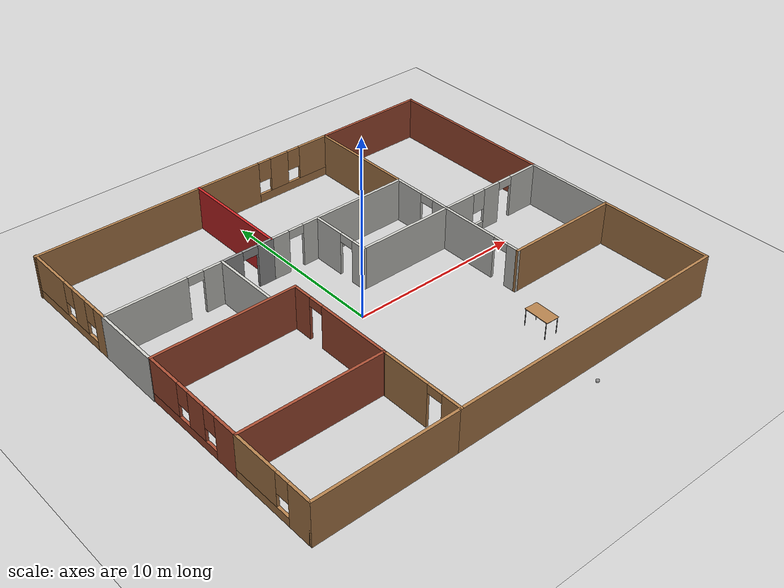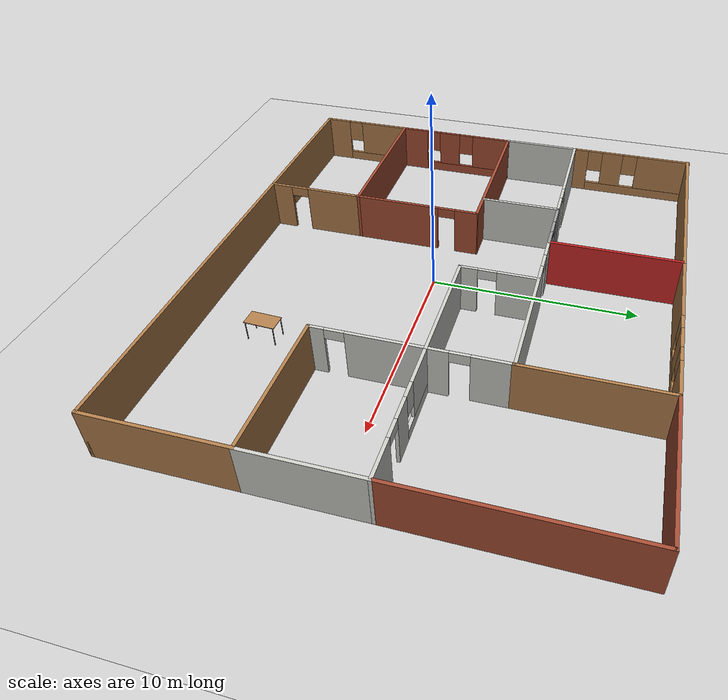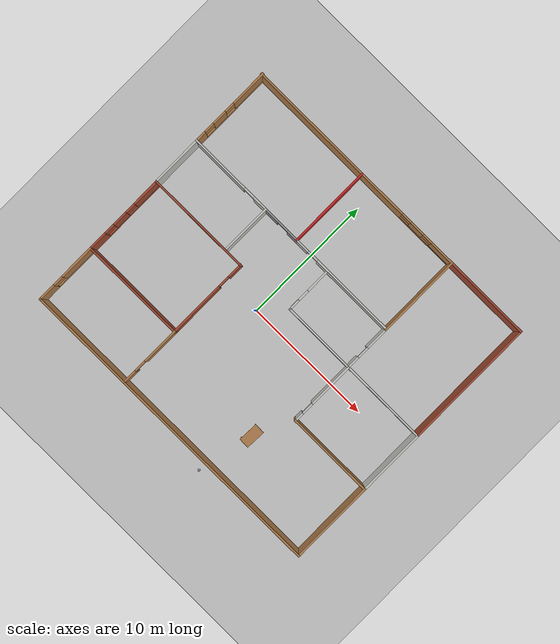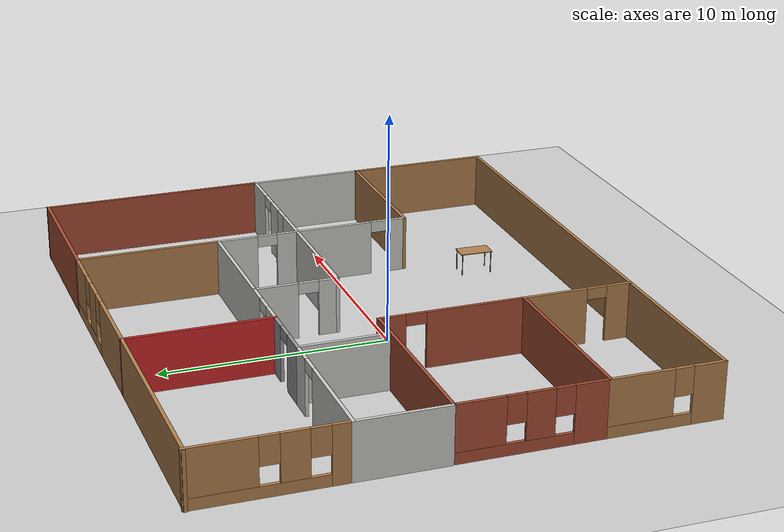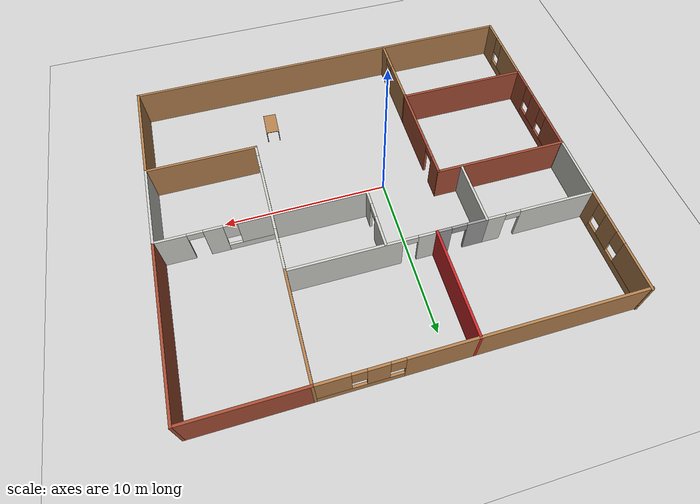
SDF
<sdf version="1.6">
 <world name="default">
  <model name="ground_plane">
   <static>1</static>
   <link name="link">
    <collision name="collision">
     <geometry><plane><normal>0 0 1</normal><size>100 100</size></plane></geometry>
     <surface><friction><ode><mu>100</mu><mu2>50</mu2></ode></friction></surface>
    </collision>
    <visual name="visual">
     <cast_shadows>0</cast_shadows>
     <geometry><plane><normal>0 0 1</normal><size>100 100</size></plane></geometry>
     <material>
      <script><uri>file://media/materials/scripts/gazebo.material</uri><name>Gazebo/Grey</name></script>
     </material>
    </visual>
   </link>
  </model>
  <model name="building">
   <pose>1.3748 0.98314 0 0 -0 0</pose>
   <link name="Wall_102">
    <pose>5.78961 2.52674 0 0 -0 1.5708</pose>
    <visual name="Wall_102_Visual_0">
     <pose>-1.35652 0 1.25 0 -0 0</pose>
     <geometry><box><size>1.03697 0.15 2.5</size></box></geometry>
     <material>
      <script><uri>file://media/materials/scripts/gazebo.material</uri><name>Gazebo/CeilingTiled</name></script>
      <ambient>1 1 1 1</ambient>
     </material>
     <meta><layer>0</layer></meta>
    </visual>
    <collision name="Wall_102_Collision_0">
     <geometry><box><size>1.03697 0.15 2.5</size></box></geometry>
     <pose>-1.35652 0 1.25 0 -0 0</pose>
    </collision>
    <visual name="Wall_102_Visual_1">
     <pose>0.968484 0 1.25 0 -0 0</pose>
     <geometry><box><size>1.81303 0.15 2.5</size></box></geometry>
     <material>
      <script><uri>file://media/materials/scripts/gazebo.material</uri><name>Gazebo/CeilingTiled</name></script>
      <ambient>1 1 1 1</ambient>
     </material>
     <meta><layer>0</layer></meta>
    </visual>
    <collision name="Wall_102_Collision_1">
     <geometry><box><size>1.81303 0.15 2.5</size></box></geometry>
     <pose>0.968484 0 1.25 0 -0 0</pose>
    </collision>
    <visual name="Wall_102_Visual_2">
     <pose>-0.388033 0 2.25 0 -0 0</pose>
     <geometry><box><size>0.9 0.15 0.5</size></box></geometry>
     <material>
      <script><uri>file://media/materials/scripts/gazebo.material</uri><name>Gazebo/CeilingTiled</name></script>
      <ambient>1 1 1 1</ambient>
     </material>
     <meta><layer>0</layer></meta>
    </visual>
    <collision name="Wall_102_Collision_2">
     <geometry><box><size>0.9 0.15 0.5</size></box></geometry>
     <pose>-0.388033 0 2.25 0 -0 0</pose>
    </collision>
   </link>
   <link name="Wall_104">
    <collision name="Wall_104_Collision">
     <geometry><box><size>6.45348 0.15 2.5</size></box></geometry>
     <pose>0 0 1.25 0 -0 0</pose>
    </collision>
    <visual name="Wall_104_Visual">
     <pose>0 0 1.25 0 -0 0</pose>
     <geometry><box><size>6.45348 0.15 2.5</size></box></geometry>
     <material>
      <script><uri>file://media/materials/scripts/gazebo.material</uri><name>Gazebo/Red</name></script>
      <ambient>1 1 1 1</ambient>
     </material>
     <meta><layer>0</layer></meta>
    </visual>
    <pose>-2.78961 7.525 0 0 -0 1.5708</pose>
   </link>
   <link name="Wall_107">
    <collision name="Wall_107_Collision">
     <geometry><box><size>6.5 0.15 2.5</size></box></geometry>
     <pose>0 0 1.25 0 -0 0</pose>
    </collision>
    <visual name="Wall_107_Visual">
     <pose>0 0 1.25 0 -0 0</pose>
     <geometry><box><size>6.5 0.15 2.5</size></box></geometry>
     <material>
      <script><uri>file://media/materials/scripts/gazebo.material</uri><name>Gazebo/Wood</name></script>
      <ambient>1 1 1 1</ambient>
     </material>
     <meta><layer>0</layer></meta>
    </visual>
    <pose>5.78961 7.50174 0 0 -0 1.5708</pose>
   </link>
   <link name="Wall_111">
    <pose>-12.342 7.54826 0 0 -0 1.5708</pose>
    <visual name="Wall_111_Visual_0">
     <pose>-2.8028 0 1.25 0 -0 0</pose>
     <geometry><box><size>0.894393 0.15 2.5</size></box></geometry>
     <material>
      <script><uri>file://media/materials/scripts/gazebo.material</uri><name>Gazebo/Wood</name></script>
      <ambient>1 1 1 1</ambient>
     </material>
     <meta><layer>0</layer></meta>
    </visual>
    <collision name="Wall_111_Collision_0">
     <geometry><box><size>0.894393 0.15 2.5</size></box></geometry>
     <pose>-2.8028 0 1.25 0 -0 0</pose>
    </collision>
    <visual name="Wall_111_Visual_1">
     <pose>0.447197 0 0.25 0 -0 0</pose>
     <geometry><box><size>5.60561 0.15 0.5</size></box></geometry>
     <material>
      <script><uri>file://media/materials/scripts/gazebo.material</uri><name>Gazebo/Wood</name></script>
      <ambient>1 1 1 1</ambient>
     </material>
     <meta><layer>0</layer></meta>
    </visual>
    <collision name="Wall_111_Collision_1">
     <geometry><box><size>5.60561 0.15 0.5</size></box></geometry>
     <pose>0.447197 0 0.25 0 -0 0</pose>
    </collision>
    <visual name="Wall_111_Visual_2">
     <pose>-0.984121 0 1.5 0 -0 0</pose>
     <geometry><box><size>1.14297 0.15 2</size></box></geometry>
     <material>
      <script><uri>file://media/materials/scripts/gazebo.material</uri><name>Gazebo/Wood</name></script>
      <ambient>1 1 1 1</ambient>
     </material>
     <meta><layer>0</layer></meta>
    </visual>
    <collision name="Wall_111_Collision_2">
     <geometry><box><size>1.14297 0.15 2</size></box></geometry>
     <pose>-0.984121 0 1.5 0 -0 0</pose>
    </collision>
    <visual name="Wall_111_Visual_3">
     <pose>1.81868 0 1.5 0 -0 0</pose>
     <geometry><box><size>2.86264 0.15 2</size></box></geometry>
     <material>
      <script><uri>file://media/materials/scripts/gazebo.material</uri><name>Gazebo/Wood</name></script>
      <ambient>1 1 1 1</ambient>
     </material>
     <meta><layer>0</layer></meta>
    </visual>
    <collision name="Wall_111_Collision_3">
     <geometry><box><size>2.86264 0.15 2</size></box></geometry>
     <pose>1.81868 0 1.5 0 -0 0</pose>
    </collision>
    <visual name="Wall_111_Visual_4">
     <pose>-1.95561 0 1.9 0 -0 0</pose>
     <geometry><box><size>0.8 0.15 1.2</size></box></geometry>
     <material>
      <script><uri>file://media/materials/scripts/gazebo.material</uri><name>Gazebo/Wood</name></script>
      <ambient>1 1 1 1</ambient>
     </material>
     <meta><layer>0</layer></meta>
    </visual>
    <collision name="Wall_111_Collision_4">
     <geometry><box><size>0.8 0.15 1.2</size></box></geometry>
     <pose>-1.95561 0 1.9 0 -0 0</pose>
    </collision>
    <visual name="Wall_111_Visual_5">
     <pose>-0.012636 0 1.9 0 -0 0</pose>
     <geometry><box><size>0.8 0.15 1.2</size></box></geometry>
     <material>
      <script><uri>file://media/materials/scripts/gazebo.material</uri><name>Gazebo/Wood</name></script>
      <ambient>1 1 1 1</ambient>
     </material>
     <meta><layer>0</layer></meta>
    </visual>
    <collision name="Wall_111_Collision_5">
     <geometry><box><size>0.8 0.15 1.2</size></box></geometry>
     <pose>-0.012636 0 1.9 0 -0 0</pose>
    </collision>
   </link>
   <link name="Wall_115">
    <collision name="Wall_115_Collision">
     <geometry><box><size>9.75 0.15 2.5</size></box></geometry>
     <pose>0 0 1.25 0 -0 0</pose>
    </collision>
    <visual name="Wall_115_Visual">
     <pose>0 0 1.25 0 -0 0</pose>
     <geometry><box><size>9.75 0.15 2.5</size></box></geometry>
     <material>
      <script><uri>file://media/materials/scripts/gazebo.material</uri><name>Gazebo/Wood</name></script>
      <ambient>1 1 1 1</ambient>
     </material>
     <meta><layer>0</layer></meta>
    </visual>
    <pose>-7.58961 10.6767 0 0 -0 3.14159</pose>
   </link>
   <link name="Wall_118">
    <collision name="Wall_118_Collision">
     <geometry><box><size>6.75 0.15 2.5</size></box></geometry>
     <pose>0 0 1.25 0 -0 0</pose>
    </collision>
    <visual name="Wall_118_Visual">
     <pose>0 0 1.25 0 -0 0</pose>
     <geometry><box><size>6.75 0.15 2.5</size></box></geometry>
     <material>
      <script><uri>file://media/materials/scripts/gazebo.material</uri><name>Gazebo/Bricks</name></script>
      <ambient>1 1 1 1</ambient>
     </material>
     <meta><layer>0</layer></meta>
    </visual>
    <pose>9.08961 10.6767 0 0 -0 0</pose>
   </link>
   <link name="Wall_119">
    <collision name="Wall_119_Collision">
     <geometry><box><size>10 0.15 2.5</size></box></geometry>
     <pose>0 0 1.25 0 -0 0</pose>
    </collision>
    <visual name="Wall_119_Visual">
     <pose>0 0 1.25 0 -0 0</pose>
     <geometry><box><size>10 0.15 2.5</size></box></geometry>
     <material>
      <script><uri>file://media/materials/scripts/gazebo.material</uri><name>Gazebo/Bricks</name></script>
      <ambient>1 1 1 1</ambient>
     </material>
     <meta><layer>0</layer></meta>
    </visual>
    <pose>12.3896 5.75174 0 0 0 -1.5708</pose>
   </link>
   <link name="Wall_14">
    <collision name="Wall_14_Collision">
     <geometry><box><size>8.1171 0.15 2.5</size></box></geometry>
     <pose>0 0 1.25 0 -0 0</pose>
    </collision>
    <visual name="Wall_14_Visual">
     <pose>0 0 1.25 0 -0 0</pose>
     <geometry><box><size>8.1171 0.15 2.5</size></box></geometry>
     <material>
      <script><uri>file://media/materials/scripts/gazebo.material</uri><name>Gazebo/Wood</name></script>
      <ambient>1 1 1 1</ambient>
     </material>
     <meta><layer>0</layer></meta>
    </visual>
    <pose>-8.32684 -10.7233 0 0 -0 0</pose>
   </link>
   <link name="Wall_16">
    <pose>-4.29676 -8.29826 0 0 -0 1.5708</pose>
    <visual name="Wall_16_Visual_0">
     <pose>-1.90821 0 1.25 0 -0 0</pose>
     <geometry><box><size>1.18359 0.15 2.5</size></box></geometry>
     <material>
      <script><uri>file://media/materials/scripts/gazebo.material</uri><name>Gazebo/Wood</name></script>
      <ambient>1 1 1 1</ambient>
     </material>
     <meta><layer>0</layer></meta>
    </visual>
    <collision name="Wall_16_Collision_0">
     <geometry><box><size>1.18359 0.15 2.5</size></box></geometry>
     <pose>-1.90821 0 1.25 0 -0 0</pose>
    </collision>
    <visual name="Wall_16_Visual_1">
     <pose>1.04179 0 1.25 0 -0 0</pose>
     <geometry><box><size>2.91641 0.15 2.5</size></box></geometry>
     <material>
      <script><uri>file://media/materials/scripts/gazebo.material</uri><name>Gazebo/Wood</name></script>
      <ambient>1 1 1 1</ambient>
     </material>
     <meta><layer>0</layer></meta>
    </visual>
    <collision name="Wall_16_Collision_1">
     <geometry><box><size>2.91641 0.15 2.5</size></box></geometry>
     <pose>1.04179 0 1.25 0 -0 0</pose>
    </collision>
    <visual name="Wall_16_Visual_2">
     <pose>-0.866411 0 2.25 0 -0 0</pose>
     <geometry><box><size>0.9 0.15 0.5</size></box></geometry>
     <material>
      <script><uri>file://media/materials/scripts/gazebo.material</uri><name>Gazebo/Wood</name></script>
      <ambient>1 1 1 1</ambient>
     </material>
     <meta><layer>0</layer></meta>
    </visual>
    <collision name="Wall_16_Collision_2">
     <geometry><box><size>0.9 0.15 0.5</size></box></geometry>
     <pose>-0.866411 0 2.25 0 -0 0</pose>
    </collision>
   </link>
   <link name="Wall_20">
    <pose>-12.3104 -8.29826 0 0 -0 1.5708</pose>
    <visual name="Wall_20_Visual_0">
     <pose>-1.79068 0 1.25 0 -0 0</pose>
     <geometry><box><size>1.41863 0.15 2.5</size></box></geometry>
     <material>
      <script><uri>file://media/materials/scripts/gazebo.material</uri><name>Gazebo/Wood</name></script>
      <ambient>1 1 1 1</ambient>
     </material>
     <meta><layer>0</layer></meta>
    </visual>
    <collision name="Wall_20_Collision_0">
     <geometry><box><size>1.41863 0.15 2.5</size></box></geometry>
     <pose>-1.79068 0 1.25 0 -0 0</pose>
    </collision>
    <visual name="Wall_20_Visual_1">
     <pose>0.709317 0 0.25 0 -0 0</pose>
     <geometry><box><size>3.58137 0.15 0.5</size></box></geometry>
     <material>
      <script><uri>file://media/materials/scripts/gazebo.material</uri><name>Gazebo/Wood</name></script>
      <ambient>1 1 1 1</ambient>
     </material>
     <meta><layer>0</layer></meta>
    </visual>
    <collision name="Wall_20_Collision_1">
     <geometry><box><size>3.58137 0.15 0.5</size></box></geometry>
     <pose>0.709317 0 0.25 0 -0 0</pose>
    </collision>
    <visual name="Wall_20_Visual_2">
     <pose>1.10932 0 1.5 0 -0 0</pose>
     <geometry><box><size>2.78137 0.15 2</size></box></geometry>
     <material>
      <script><uri>file://media/materials/scripts/gazebo.material</uri><name>Gazebo/Wood</name></script>
      <ambient>1 1 1 1</ambient>
     </material>
     <meta><layer>0</layer></meta>
    </visual>
    <collision name="Wall_20_Collision_2">
     <geometry><box><size>2.78137 0.15 2</size></box></geometry>
     <pose>1.10932 0 1.5 0 -0 0</pose>
    </collision>
    <visual name="Wall_20_Visual_3">
     <pose>-0.681367 0 1.9 0 -0 0</pose>
     <geometry><box><size>0.8 0.15 1.2</size></box></geometry>
     <material>
      <script><uri>file://media/materials/scripts/gazebo.material</uri><name>Gazebo/Wood</name></script>
      <ambient>1 1 1 1</ambient>
     </material>
     <meta><layer>0</layer></meta>
    </visual>
    <collision name="Wall_20_Collision_3">
     <geometry><box><size>0.8 0.15 1.2</size></box></geometry>
     <pose>-0.681367 0 1.9 0 -0 0</pose>
    </collision>
   </link>
   <link name="Wall_22">
    <collision name="Wall_22_Collision">
     <geometry><box><size>8.16363 0.15 2.5</size></box></geometry>
     <pose>0 0 1.25 0 -0 0</pose>
    </collision>
    <visual name="Wall_22_Visual">
     <pose>0 0 1.25 0 -0 0</pose>
     <geometry><box><size>8.16363 0.15 2.5</size></box></geometry>
     <material>
      <script><uri>file://media/materials/scripts/gazebo.material</uri><name>Gazebo/Bricks</name></script>
      <ambient>1 1 1 1</ambient>
     </material>
     <meta><layer>0</layer></meta>
    </visual>
    <pose>-8.30358 -5.87326 0 0 -0 0</pose>
   </link>
   <link name="Wall_24">
    <collision name="Wall_24_Collision">
     <geometry><box><size>16.8829 0.15 2.5</size></box></geometry>
     <pose>0 0 1.25 0 -0 0</pose>
    </collision>
    <visual name="Wall_24_Visual">
     <pose>0 0 1.25 0 -0 0</pose>
     <geometry><box><size>16.8829 0.15 2.5</size></box></geometry>
     <material>
      <script><uri>file://media/materials/scripts/gazebo.material</uri><name>Gazebo/Wood</name></script>
      <ambient>1 1 1 1</ambient>
     </material>
     <meta><layer>0</layer></meta>
    </visual>
    <pose>4.02316 -10.7233 0 0 -0 0</pose>
   </link>
   <link name="Wall_26">
    <collision name="Wall_26_Collision">
     <geometry><box><size>6.5 0.15 2.5</size></box></geometry>
     <pose>0 0 1.25 0 -0 0</pose>
    </collision>
    <visual name="Wall_26_Visual">
     <pose>0 0 1.25 0 -0 0</pose>
     <geometry><box><size>6.5 0.15 2.5</size></box></geometry>
     <material>
      <script><uri>file://media/materials/scripts/gazebo.material</uri><name>Gazebo/Wood</name></script>
      <ambient>1 1 1 1</ambient>
     </material>
     <meta><layer>0</layer></meta>
    </visual>
    <pose>12.3896 -7.54826 0 0 -0 1.5708</pose>
   </link>
   <link name="Wall_27">
    <collision name="Wall_27_Collision">
     <geometry><box><size>6.75 0.15 2.5</size></box></geometry>
     <pose>0 0 1.25 0 -0 0</pose>
    </collision>
    <visual name="Wall_27_Visual">
     <pose>0 0 1.25 0 -0 0</pose>
     <geometry><box><size>6.75 0.15 2.5</size></box></geometry>
     <material>
      <script><uri>file://media/materials/scripts/gazebo.material</uri><name>Gazebo/Wood</name></script>
      <ambient>1 1 1 1</ambient>
     </material>
     <meta><layer>0</layer></meta>
    </visual>
    <pose>9.08961 -4.37326 0 0 -0 3.14159</pose>
   </link>
   <link name="Wall_33">
    <pose>-12.3104 -2.69826 0 0 -0 1.5708</pose>
    <visual name="Wall_33_Visual_0">
     <pose>-2.49071 0 1.25 0 -0 0</pose>
     <geometry><box><size>1.51858 0.15 2.5</size></box></geometry>
     <material>
      <script><uri>file://media/materials/scripts/gazebo.material</uri><name>Gazebo/Bricks</name></script>
      <ambient>1 1 1 1</ambient>
     </material>
     <meta><layer>0</layer></meta>
    </visual>
    <collision name="Wall_33_Collision_0">
     <geometry><box><size>1.51858 0.15 2.5</size></box></geometry>
     <pose>-2.49071 0 1.25 0 -0 0</pose>
    </collision>
    <visual name="Wall_33_Visual_1">
     <pose>0.759292 0 0.25 0 -0 0</pose>
     <geometry><box><size>4.98142 0.15 0.5</size></box></geometry>
     <material>
      <script><uri>file://media/materials/scripts/gazebo.material</uri><name>Gazebo/Bricks</name></script>
      <ambient>1 1 1 1</ambient>
     </material>
     <meta><layer>0</layer></meta>
    </visual>
    <collision name="Wall_33_Collision_1">
     <geometry><box><size>4.98142 0.15 0.5</size></box></geometry>
     <pose>0.759292 0 0.25 0 -0 0</pose>
    </collision>
    <visual name="Wall_33_Visual_2">
     <pose>-0.3368 0 1.5 0 -0 0</pose>
     <geometry><box><size>1.18923 0.15 2</size></box></geometry>
     <material>
      <script><uri>file://media/materials/scripts/gazebo.material</uri><name>Gazebo/Bricks</name></script>
      <ambient>1 1 1 1</ambient>
     </material>
     <meta><layer>0</layer></meta>
    </visual>
    <collision name="Wall_33_Collision_2">
     <geometry><box><size>1.18923 0.15 2</size></box></geometry>
     <pose>-0.3368 0 1.5 0 -0 0</pose>
    </collision>
    <visual name="Wall_33_Visual_3">
     <pose>2.15391 0 1.5 0 -0 0</pose>
     <geometry><box><size>2.19218 0.15 2</size></box></geometry>
     <material>
      <script><uri>file://media/materials/scripts/gazebo.material</uri><name>Gazebo/Bricks</name></script>
      <ambient>1 1 1 1</ambient>
     </material>
     <meta><layer>0</layer></meta>
    </visual>
    <collision name="Wall_33_Collision_3">
     <geometry><box><size>2.19218 0.15 2</size></box></geometry>
     <pose>2.15391 0 1.5 0 -0 0</pose>
    </collision>
    <visual name="Wall_33_Visual_4">
     <pose>-1.33142 0 1.9 0 -0 0</pose>
     <geometry><box><size>0.8 0.15 1.2</size></box></geometry>
     <material>
      <script><uri>file://media/materials/scripts/gazebo.material</uri><name>Gazebo/Bricks</name></script>
      <ambient>1 1 1 1</ambient>
     </material>
     <meta><layer>0</layer></meta>
    </visual>
    <collision name="Wall_33_Collision_4">
     <geometry><box><size>0.8 0.15 1.2</size></box></geometry>
     <pose>-1.33142 0 1.9 0 -0 0</pose>
    </collision>
    <visual name="Wall_33_Visual_5">
     <pose>0.657816 0 1.9 0 -0 0</pose>
     <geometry><box><size>0.8 0.15 1.2</size></box></geometry>
     <material>
      <script><uri>file://media/materials/scripts/gazebo.material</uri><name>Gazebo/Bricks</name></script>
      <ambient>1 1 1 1</ambient>
     </material>
     <meta><layer>0</layer></meta>
    </visual>
    <collision name="Wall_33_Collision_5">
     <geometry><box><size>0.8 0.15 1.2</size></box></geometry>
     <pose>0.657816 0 1.9 0 -0 0</pose>
    </collision>
   </link>
   <link name="Wall_34">
    <collision name="Wall_34_Collision">
     <geometry><box><size>8.16363 0.15 2.5</size></box></geometry>
     <pose>0 0 1.25 0 -0 0</pose>
    </collision>
    <visual name="Wall_34_Visual">
     <pose>0 0 1.25 0 -0 0</pose>
     <geometry><box><size>8.16363 0.15 2.5</size></box></geometry>
     <material>
      <script><uri>file://media/materials/scripts/gazebo.material</uri><name>Gazebo/Bricks</name></script>
      <ambient>1 1 1 1</ambient>
     </material>
     <meta><layer>0</layer></meta>
    </visual>
    <pose>-8.30358 0.476738 0 0 -0 0</pose>
   </link>
   <link name="Wall_35">
    <pose>-4.29676 -2.74479 0 0 0 -1.5708</pose>
    <visual name="Wall_35_Visual_0">
     <pose>-2.66441 0 1.25 0 -0 0</pose>
     <geometry><box><size>1.17118 0.15 2.5</size></box></geometry>
     <material>
      <script><uri>file://media/materials/scripts/gazebo.material</uri><name>Gazebo/Bricks</name></script>
      <ambient>1 1 1 1</ambient>
     </material>
     <meta><layer>0</layer></meta>
    </visual>
    <collision name="Wall_35_Collision_0">
     <geometry><box><size>1.17118 0.15 2.5</size></box></geometry>
     <pose>-2.66441 0 1.25 0 -0 0</pose>
    </collision>
    <visual name="Wall_35_Visual_1">
     <pose>1.03559 0 1.25 0 -0 0</pose>
     <geometry><box><size>4.42882 0.15 2.5</size></box></geometry>
     <material>
      <script><uri>file://media/materials/scripts/gazebo.material</uri><name>Gazebo/Bricks</name></script>
      <ambient>1 1 1 1</ambient>
     </material>
     <meta><layer>0</layer></meta>
    </visual>
    <collision name="Wall_35_Collision_1">
     <geometry><box><size>4.42882 0.15 2.5</size></box></geometry>
     <pose>1.03559 0 1.25 0 -0 0</pose>
    </collision>
    <visual name="Wall_35_Visual_2">
     <pose>-1.62882 0 2.25 0 -0 0</pose>
     <geometry><box><size>0.9 0.15 0.5</size></box></geometry>
     <material>
      <script><uri>file://media/materials/scripts/gazebo.material</uri><name>Gazebo/Bricks</name></script>
      <ambient>1 1 1 1</ambient>
     </material>
     <meta><layer>0</layer></meta>
    </visual>
    <collision name="Wall_35_Collision_2">
     <geometry><box><size>0.9 0.15 0.5</size></box></geometry>
     <pose>-1.62882 0 2.25 0 -0 0</pose>
    </collision>
   </link>
   <link name="Wall_69">
    <pose>1.46157 10.6767 0 0 -0 0</pose>
    <visual name="Wall_69_Visual_0">
     <pose>-2.34247 0 1.25 0 -0 0</pose>
     <geometry><box><size>3.92114 0.15 2.5</size></box></geometry>
     <material>
      <script><uri>file://media/materials/scripts/gazebo.material</uri><name>Gazebo/Wood</name></script>
      <ambient>1 1 1 1</ambient>
     </material>
     <meta><layer>0</layer></meta>
    </visual>
    <collision name="Wall_69_Collision_0">
     <geometry><box><size>3.92114 0.15 2.5</size></box></geometry>
     <pose>-2.34247 0 1.25 0 -0 0</pose>
    </collision>
    <visual name="Wall_69_Visual_1">
     <pose>1.96057 0 0.25 0 -0 0</pose>
     <geometry><box><size>4.68495 0.15 0.5</size></box></geometry>
     <material>
      <script><uri>file://media/materials/scripts/gazebo.material</uri><name>Gazebo/Wood</name></script>
      <ambient>1 1 1 1</ambient>
     </material>
     <meta><layer>0</layer></meta>
    </visual>
    <collision name="Wall_69_Collision_1">
     <geometry><box><size>4.68495 0.15 0.5</size></box></geometry>
     <pose>1.96057 0 0.25 0 -0 0</pose>
    </collision>
    <visual name="Wall_69_Visual_2">
     <pose>1.01271 0 1.5 0 -0 0</pose>
     <geometry><box><size>1.18923 0.15 2</size></box></geometry>
     <material>
      <script><uri>file://media/materials/scripts/gazebo.material</uri><name>Gazebo/Wood</name></script>
      <ambient>1 1 1 1</ambient>
     </material>
     <meta><layer>0</layer></meta>
    </visual>
    <collision name="Wall_69_Collision_2">
     <geometry><box><size>1.18923 0.15 2</size></box></geometry>
     <pose>1.01271 0 1.5 0 -0 0</pose>
    </collision>
    <visual name="Wall_69_Visual_3">
     <pose>3.35519 0 1.5 0 -0 0</pose>
     <geometry><box><size>1.89572 0.15 2</size></box></geometry>
     <material>
      <script><uri>file://media/materials/scripts/gazebo.material</uri><name>Gazebo/Wood</name></script>
      <ambient>1 1 1 1</ambient>
     </material>
     <meta><layer>0</layer></meta>
    </visual>
    <collision name="Wall_69_Collision_3">
     <geometry><box><size>1.89572 0.15 2</size></box></geometry>
     <pose>3.35519 0 1.5 0 -0 0</pose>
    </collision>
    <visual name="Wall_69_Visual_4">
     <pose>0.018094 0 1.9 0 -0 0</pose>
     <geometry><box><size>0.8 0.15 1.2</size></box></geometry>
     <material>
      <script><uri>file://media/materials/scripts/gazebo.material</uri><name>Gazebo/Wood</name></script>
      <ambient>1 1 1 1</ambient>
     </material>
     <meta><layer>0</layer></meta>
    </visual>
    <collision name="Wall_69_Collision_4">
     <geometry><box><size>0.8 0.15 1.2</size></box></geometry>
     <pose>0.018094 0 1.9 0 -0 0</pose>
    </collision>
    <visual name="Wall_69_Visual_5">
     <pose>2.00733 0 1.9 0 -0 0</pose>
     <geometry><box><size>0.8 0.15 1.2</size></box></geometry>
     <material>
      <script><uri>file://media/materials/scripts/gazebo.material</uri><name>Gazebo/Wood</name></script>
      <ambient>1 1 1 1</ambient>
     </material>
     <meta><layer>0</layer></meta>
    </visual>
    <collision name="Wall_69_Collision_5">
     <geometry><box><size>0.8 0.15 1.2</size></box></geometry>
     <pose>2.00733 0 1.9 0 -0 0</pose>
    </collision>
   </link>
   <link name="Wall_72">
    <collision name="Wall_72_Collision">
     <geometry><box><size>5.25 0.15 2.5</size></box></geometry>
     <pose>0 0 1.25 0 -0 0</pose>
    </collision>
    <visual name="Wall_72_Visual">
     <pose>0 0 1.25 0 -0 0</pose>
     <geometry><box><size>5.25 0.15 2.5</size></box></geometry>
     <material>
      <script><uri>file://media/materials/scripts/gazebo.material</uri><name>Gazebo/CeilingTiled</name></script>
      <ambient>1 1 1 1</ambient>
     </material>
     <meta><layer>0</layer></meta>
    </visual>
    <pose>12.3896 -1.82326 0 0 -0 1.5708</pose>
   </link>
   <link name="Wall_75">
    <pose>5.78961 -1.82326 0 0 -0 1.5708</pose>
    <visual name="Wall_75_Visual_0">
     <pose>-2.23326 0 1.25 0 -0 0</pose>
     <geometry><box><size>0.783487 0.15 2.5</size></box></geometry>
     <material>
      <script><uri>file://media/materials/scripts/gazebo.material</uri><name>Gazebo/CeilingTiled</name></script>
      <ambient>1 1 1 1</ambient>
     </material>
     <meta><layer>0</layer></meta>
    </visual>
    <collision name="Wall_75_Collision_0">
     <geometry><box><size>0.783487 0.15 2.5</size></box></geometry>
     <pose>-2.23326 0 1.25 0 -0 0</pose>
    </collision>
    <visual name="Wall_75_Visual_1">
     <pose>0.841744 0 1.25 0 -0 0</pose>
     <geometry><box><size>3.56651 0.15 2.5</size></box></geometry>
     <material>
      <script><uri>file://media/materials/scripts/gazebo.material</uri><name>Gazebo/CeilingTiled</name></script>
      <ambient>1 1 1 1</ambient>
     </material>
     <meta><layer>0</layer></meta>
    </visual>
    <collision name="Wall_75_Collision_1">
     <geometry><box><size>3.56651 0.15 2.5</size></box></geometry>
     <pose>0.841744 0 1.25 0 -0 0</pose>
    </collision>
    <visual name="Wall_75_Visual_2">
     <pose>-1.39151 0 2.25 0 -0 0</pose>
     <geometry><box><size>0.9 0.15 0.5</size></box></geometry>
     <material>
      <script><uri>file://media/materials/scripts/gazebo.material</uri><name>Gazebo/CeilingTiled</name></script>
      <ambient>1 1 1 1</ambient>
     </material>
     <meta><layer>0</layer></meta>
    </visual>
    <collision name="Wall_75_Collision_2">
     <geometry><box><size>0.9 0.15 0.5</size></box></geometry>
     <pose>-1.39151 0 2.25 0 -0 0</pose>
    </collision>
   </link>
   <link name="Wall_77">
    <pose>9.08961 0.726738 0 0 -0 3.14159</pose>
    <visual name="Wall_77_Visual_0">
     <pose>-2.4187 0 1.25 0 -0 0</pose>
     <geometry><box><size>1.91261 0.15 2.5</size></box></geometry>
     <material>
      <script><uri>file://media/materials/scripts/gazebo.material</uri><name>Gazebo/CeilingTiled</name></script>
      <ambient>1 1 1 1</ambient>
     </material>
     <meta><layer>0</layer></meta>
    </visual>
    <collision name="Wall_77_Collision_0">
     <geometry><box><size>1.91261 0.15 2.5</size></box></geometry>
     <pose>-2.4187 0 1.25 0 -0 0</pose>
    </collision>
    <visual name="Wall_77_Visual_1">
     <pose>-0.007028 0 1.25 0 -0 0</pose>
     <geometry><box><size>1.11073 0.15 2.5</size></box></geometry>
     <material>
      <script><uri>file://media/materials/scripts/gazebo.material</uri><name>Gazebo/CeilingTiled</name></script>
      <ambient>1 1 1 1</ambient>
     </material>
     <meta><layer>0</layer></meta>
    </visual>
    <collision name="Wall_77_Collision_1">
     <geometry><box><size>1.11073 0.15 2.5</size></box></geometry>
     <pose>-0.007028 0 1.25 0 -0 0</pose>
    </collision>
    <visual name="Wall_77_Visual_2">
     <pose>1.96167 0 0.25 0 -0 0</pose>
     <geometry><box><size>2.82666 0.15 0.5</size></box></geometry>
     <material>
      <script><uri>file://media/materials/scripts/gazebo.material</uri><name>Gazebo/CeilingTiled</name></script>
      <ambient>1 1 1 1</ambient>
     </material>
     <meta><layer>0</layer></meta>
    </visual>
    <collision name="Wall_77_Collision_2">
     <geometry><box><size>2.82666 0.15 0.5</size></box></geometry>
     <pose>1.96167 0 0.25 0 -0 0</pose>
    </collision>
    <visual name="Wall_77_Visual_3">
     <pose>2.36167 0 1.5 0 -0 0</pose>
     <geometry><box><size>2.02666 0.15 2</size></box></geometry>
     <material>
      <script><uri>file://media/materials/scripts/gazebo.material</uri><name>Gazebo/CeilingTiled</name></script>
      <ambient>1 1 1 1</ambient>
     </material>
     <meta><layer>0</layer></meta>
    </visual>
    <collision name="Wall_77_Collision_3">
     <geometry><box><size>2.02666 0.15 2</size></box></geometry>
     <pose>2.36167 0 1.5 0 -0 0</pose>
    </collision>
    <visual name="Wall_77_Visual_4">
     <pose>0.948336 0 1.9 0 -0 0</pose>
     <geometry><box><size>0.8 0.15 1.2</size></box></geometry>
     <material>
      <script><uri>file://media/materials/scripts/gazebo.material</uri><name>Gazebo/CeilingTiled</name></script>
      <ambient>1 1 1 1</ambient>
     </material>
     <meta><layer>0</layer></meta>
    </visual>
    <collision name="Wall_77_Collision_4">
     <geometry><box><size>0.8 0.15 1.2</size></box></geometry>
     <pose>0.948336 0 1.9 0 -0 0</pose>
    </collision>
    <visual name="Wall_77_Visual_5">
     <pose>-1.01239 0 2.25 0 -0 0</pose>
     <geometry><box><size>0.9 0.15 0.5</size></box></geometry>
     <material>
      <script><uri>file://media/materials/scripts/gazebo.material</uri><name>Gazebo/CeilingTiled</name></script>
      <ambient>1 1 1 1</ambient>
     </material>
     <meta><layer>0</layer></meta>
    </visual>
    <collision name="Wall_77_Collision_5">
     <geometry><box><size>0.9 0.15 0.5</size></box></geometry>
     <pose>-1.01239 0 2.25 0 -0 0</pose>
    </collision>
   </link>
   <link name="Wall_83">
    <pose>1.47078 4.37326 0 0 -0 0</pose>
    <visual name="Wall_83_Visual_0">
     <pose>-3.73839 0 1.25 0 -0 0</pose>
     <geometry><box><size>1.14775 0.15 2.5</size></box></geometry>
     <material>
      <script><uri>file://media/materials/scripts/gazebo.material</uri><name>Gazebo/CeilingTiled</name></script>
      <ambient>1 1 1 1</ambient>
     </material>
     <meta><layer>0</layer></meta>
    </visual>
    <collision name="Wall_83_Collision_0">
     <geometry><box><size>1.14775 0.15 2.5</size></box></geometry>
     <pose>-3.73839 0 1.25 0 -0 0</pose>
    </collision>
    <visual name="Wall_83_Visual_1">
     <pose>1.02388 0 1.25 0 -0 0</pose>
     <geometry><box><size>6.57677 0.15 2.5</size></box></geometry>
     <material>
      <script><uri>file://media/materials/scripts/gazebo.material</uri><name>Gazebo/CeilingTiled</name></script>
      <ambient>1 1 1 1</ambient>
     </material>
     <meta><layer>0</layer></meta>
    </visual>
    <collision name="Wall_83_Collision_1">
     <geometry><box><size>6.57677 0.15 2.5</size></box></geometry>
     <pose>1.02388 0 1.25 0 -0 0</pose>
    </collision>
    <visual name="Wall_83_Visual_2">
     <pose>-2.71451 0 2.25 0 -0 0</pose>
     <geometry><box><size>0.9 0.15 0.5</size></box></geometry>
     <material>
      <script><uri>file://media/materials/scripts/gazebo.material</uri><name>Gazebo/CeilingTiled</name></script>
      <ambient>1 1 1 1</ambient>
     </material>
     <meta><layer>0</layer></meta>
    </visual>
    <collision name="Wall_83_Collision_2">
     <geometry><box><size>0.9 0.15 0.5</size></box></geometry>
     <pose>-2.71451 0 2.25 0 -0 0</pose>
    </collision>
   </link>
   <link name="Wall_85">
    <collision name="Wall_85_Collision">
     <geometry><box><size>5.75 0.15 2.5</size></box></geometry>
     <pose>0 0 1.25 0 -0 0</pose>
    </collision>
    <visual name="Wall_85_Visual">
     <pose>0 0 1.25 0 -0 0</pose>
     <geometry><box><size>5.75 0.15 2.5</size></box></geometry>
     <material>
      <script><uri>file://media/materials/scripts/gazebo.material</uri><name>Gazebo/CeilingTiled</name></script>
      <ambient>1 1 1 1</ambient>
     </material>
     <meta><layer>0</layer></meta>
    </visual>
    <pose>2.98961 0.726738 0 0 -0 3.14159</pose>
   </link>
   <link name="Wall_88">
    <pose>0.189609 2.52674 0 0 -0 1.5708</pose>
    <visual name="Wall_88_Visual_0">
     <pose>-1.41735 0 1.25 0 -0 0</pose>
     <geometry><box><size>0.915297 0.15 2.5</size></box></geometry>
     <material>
      <script><uri>file://media/materials/scripts/gazebo.material</uri><name>Gazebo/CeilingTiled</name></script>
      <ambient>1 1 1 1</ambient>
     </material>
     <meta><layer>0</layer></meta>
    </visual>
    <collision name="Wall_88_Collision_0">
     <geometry><box><size>0.915297 0.15 2.5</size></box></geometry>
     <pose>-1.41735 0 1.25 0 -0 0</pose>
    </collision>
    <visual name="Wall_88_Visual_1">
     <pose>0.907649 0 1.25 0 -0 0</pose>
     <geometry><box><size>1.9347 0.15 2.5</size></box></geometry>
     <material>
      <script><uri>file://media/materials/scripts/gazebo.material</uri><name>Gazebo/CeilingTiled</name></script>
      <ambient>1 1 1 1</ambient>
     </material>
     <meta><layer>0</layer></meta>
    </visual>
    <collision name="Wall_88_Collision_1">
     <geometry><box><size>1.9347 0.15 2.5</size></box></geometry>
     <pose>0.907649 0 1.25 0 -0 0</pose>
    </collision>
    <visual name="Wall_88_Visual_2">
     <pose>-0.509703 0 2.25 0 -0 0</pose>
     <geometry><box><size>0.9 0.15 0.5</size></box></geometry>
     <material>
      <script><uri>file://media/materials/scripts/gazebo.material</uri><name>Gazebo/CeilingTiled</name></script>
      <ambient>1 1 1 1</ambient>
     </material>
     <meta><layer>0</layer></meta>
    </visual>
    <collision name="Wall_88_Collision_2">
     <geometry><box><size>0.9 0.15 0.5</size></box></geometry>
     <pose>-0.509703 0 2.25 0 -0 0</pose>
    </collision>
   </link>
   <link name="Wall_90">
    <pose>-4.25422 4.37326 0 0 -0 3.14159</pose>
    <visual name="Wall_90_Visual_0">
     <pose>-1.08199 0 1.25 0 -0 0</pose>
     <geometry><box><size>0.961491 0.15 2.5</size></box></geometry>
     <material>
      <script><uri>file://media/materials/scripts/gazebo.material</uri><name>Gazebo/Grey</name></script>
      <ambient>1 1 1 1</ambient>
     </material>
     <meta><layer>0</layer></meta>
    </visual>
    <collision name="Wall_90_Collision_0">
     <geometry><box><size>0.961491 0.15 2.5</size></box></geometry>
     <pose>-1.08199 0 1.25 0 -0 0</pose>
    </collision>
    <visual name="Wall_90_Visual_1">
     <pose>0.930745 0 1.25 0 -0 0</pose>
     <geometry><box><size>1.26398 0.15 2.5</size></box></geometry>
     <material>
      <script><uri>file://media/materials/scripts/gazebo.material</uri><name>Gazebo/Grey</name></script>
      <ambient>1 1 1 1</ambient>
     </material>
     <meta><layer>0</layer></meta>
    </visual>
    <collision name="Wall_90_Collision_1">
     <geometry><box><size>1.26398 0.15 2.5</size></box></geometry>
     <pose>0.930745 0 1.25 0 -0 0</pose>
    </collision>
    <visual name="Wall_90_Visual_2">
     <pose>-0.151246 0 2.25 0 -0 0</pose>
     <geometry><box><size>0.9 0.15 0.5</size></box></geometry>
     <material>
      <script><uri>file://media/materials/scripts/gazebo.material</uri><name>Gazebo/Grey</name></script>
      <ambient>1 1 1 1</ambient>
     </material>
     <meta><layer>0</layer></meta>
    </visual>
    <collision name="Wall_90_Collision_2">
     <geometry><box><size>0.9 0.15 0.5</size></box></geometry>
     <pose>-0.151246 0 2.25 0 -0 0</pose>
    </collision>
   </link>
   <link name="Wall_93">
    <collision name="Wall_93_Collision">
     <geometry><box><size>4 0.15 2.5</size></box></geometry>
     <pose>0 0 1.25 0 -0 0</pose>
    </collision>
    <visual name="Wall_93_Visual">
     <pose>0 0 1.25 0 -0 0</pose>
     <geometry><box><size>4 0.15 2.5</size></box></geometry>
     <material>
      <script><uri>file://media/materials/scripts/gazebo.material</uri><name>Gazebo/CeilingTiled</name></script>
      <ambient>1 1 1 1</ambient>
     </material>
     <meta><layer>0</layer></meta>
    </visual>
    <pose>-5.74195 2.44826 0 0 0 -1.5708</pose>
   </link>
   <link name="Wall_95">
    <pose>-9.04195 4.37326 0 0 -0 3.14159</pose>
    <visual name="Wall_95_Visual_0">
     <pose>-2.76986 0 1.25 0 -0 0</pose>
     <geometry><box><size>1.21027 0.15 2.5</size></box></geometry>
     <material>
      <script><uri>file://media/materials/scripts/gazebo.material</uri><name>Gazebo/CeilingTiled</name></script>
      <ambient>1 1 1 1</ambient>
     </material>
     <meta><layer>0</layer></meta>
    </visual>
    <collision name="Wall_95_Collision_0">
     <geometry><box><size>1.21027 0.15 2.5</size></box></geometry>
     <pose>-2.76986 0 1.25 0 -0 0</pose>
    </collision>
    <visual name="Wall_95_Visual_1">
     <pose>1.05514 0 1.25 0 -0 0</pose>
     <geometry><box><size>4.63973 0.15 2.5</size></box></geometry>
     <material>
      <script><uri>file://media/materials/scripts/gazebo.material</uri><name>Gazebo/CeilingTiled</name></script>
      <ambient>1 1 1 1</ambient>
     </material>
     <meta><layer>0</layer></meta>
    </visual>
    <collision name="Wall_95_Collision_1">
     <geometry><box><size>4.63973 0.15 2.5</size></box></geometry>
     <pose>1.05514 0 1.25 0 -0 0</pose>
    </collision>
    <visual name="Wall_95_Visual_2">
     <pose>-1.71473 0 2.25 0 -0 0</pose>
     <geometry><box><size>0.9 0.15 0.5</size></box></geometry>
     <material>
      <script><uri>file://media/materials/scripts/gazebo.material</uri><name>Gazebo/CeilingTiled</name></script>
      <ambient>1 1 1 1</ambient>
     </material>
     <meta><layer>0</layer></meta>
    </visual>
    <collision name="Wall_95_Collision_2">
     <geometry><box><size>0.9 0.15 0.5</size></box></geometry>
     <pose>-1.71473 0 2.25 0 -0 0</pose>
    </collision>
   </link>
   <link name="Wall_96">
    <collision name="Wall_96_Collision">
     <geometry><box><size>4 0.15 2.5</size></box></geometry>
     <pose>0 0 1.25 0 -0 0</pose>
    </collision>
    <visual name="Wall_96_Visual">
     <pose>0 0 1.25 0 -0 0</pose>
     <geometry><box><size>4 0.15 2.5</size></box></geometry>
     <material>
      <script><uri>file://media/materials/scripts/gazebo.material</uri><name>Gazebo/CeilingTiled</name></script>
      <ambient>1 1 1 1</ambient>
     </material>
     <meta><layer>0</layer></meta>
    </visual>
    <pose>-12.342 2.44826 0 0 0 -1.5708</pose>
   </link>
   <static>1</static>
  </model>
  <model name="table_clone_0">
   <static>1</static>
   <link name="link">
    <collision name="surface">
     <pose>0 0 1 0 -0 0</pose>
     <geometry><box><size>1.5 0.8 0.03</size></box></geometry>
     <surface><friction><ode><mu>0.6</mu><mu2>0.6</mu2></ode></friction></surface>
    </collision>
    <visual name="visual1">
     <pose>0 0 1 0 -0 0</pose>
     <geometry><box><size>1.5 0.8 0.03</size></box></geometry>
     <material>
      <script><uri>file://media/materials/scripts/gazebo.material</uri><name>Gazebo/Wood</name></script>
     </material>
    </visual>
    <collision name="front_left_leg">
     <pose>0.68 0.38 0.5 0 -0 0</pose>
     <geometry><cylinder><radius>0.02</radius><length>1</length></cylinder></geometry>
    </collision>
    <visual name="front_left_leg">
     <pose>0.68 0.38 0.5 0 -0 0</pose>
     <geometry><cylinder><radius>0.02</radius><length>1</length></cylinder></geometry>
     <material>
      <script><uri>file://media/materials/scripts/gazebo.material</uri><name>Gazebo/Grey</name></script>
     </material>
    </visual>
    <collision name="front_right_leg">
     <pose>0.68 -0.38 0.5 0 -0 0</pose>
     <geometry><cylinder><radius>0.02</radius><length>1</length></cylinder></geometry>
    </collision>
    <visual name="front_right_leg">
     <pose>0.68 -0.38 0.5 0 -0 0</pose>
     <geometry><cylinder><radius>0.02</radius><length>1</length></cylinder></geometry>
     <material>
      <script><uri>file://media/materials/scripts/gazebo.material</uri><name>Gazebo/Grey</name></script>
     </material>
    </visual>
    <collision name="back_right_leg">
     <pose>-0.68 -0.38 0.5 0 -0 0</pose>
     <geometry><cylinder><radius>0.02</radius><length>1</length></cylinder></geometry>
    </collision>
    <visual name="back_right_leg">
     <pose>-0.68 -0.38 0.5 0 -0 0</pose>
     <geometry><cylinder><radius>0.02</radius><length>1</length></cylinder></geometry>
     <material>
      <script><uri>file://media/materials/scripts/gazebo.material</uri><name>Gazebo/Grey</name></script>
     </material>
    </visual>
    <collision name="back_left_leg">
     <pose>-0.68 0.38 0.5 0 -0 0</pose>
     <geometry><cylinder><radius>0.02</radius><length>1</length></cylinder></geometry>
    </collision>
    <visual name="back_left_leg">
     <pose>-0.68 0.38 0.5 0 -0 0</pose>
     <geometry><cylinder><radius>0.02</radius><length>1</length></cylinder></geometry>
     <material>
      <script><uri>file://media/materials/scripts/gazebo.material</uri><name>Gazebo/Grey</name></script>
     </material>
    </visual>
   </link>
   <pose>5.85344 -6.33168 0 0 -0 1.52977</pose>
  </model>
  <model name="my_ball">
   <link name="link_0">
    <inertial>
     <mass>1</mass>
     <inertia><ixx>0.1</ixx><ixy>0</ixy><ixz>0</ixz><iyy>0.1</iyy><iyz>0</iyz><izz>0.1</izz></inertia>
    </inertial>
    <visual name="visual">
     <geometry><sphere><radius>0.1</radius></sphere></geometry>
     <material>
      <lighting>1</lighting>
      <script><uri>file://media/materials/scripts/gazebo.material</uri><name>Gazebo/Grey</name></script>
      <shader type="pixel"><normal_map>__default__</normal_map></shader>
      <ambient>1 1 1 1</ambient>
      <diffuse>1 1 1 1</diffuse>
      <specular>1 1 1 1</specular>
      <emissive>1 1 1 1</emissive>
     </material>
    </visual>
    <collision name="collision">
     <geometry><sphere><radius>0.1</radius></sphere></geometry>
     <surface>
      <friction>
       <ode><mu>1</mu><mu2>1</mu2><fdir1>0 0 0</fdir1><slip1>0</slip1><slip2>0</slip2></ode>
       <torsional>
        <coefficient>1</coefficient>
        <patch_radius>0</patch_radius>
        <surface_radius>0</surface_radius>
        <use_patch_radius>1</use_patch_radius>
        <ode><slip>0</slip></ode>
       </torsional>
      </friction>
      <bounce><restitution_coefficient>0</restitution_coefficient><threshold>1e+06</threshold></bounce>
      <contact>
       <collide_without_contact>0</collide_without_contact>
       <collide_without_contact_bitmask>1</collide_without_contact_bitmask>
       <collide_bitmask>1</collide_bitmask>
       <ode>
        <soft_cfm>0</soft_cfm>
        <soft_erp>0.2</soft_erp>
        <kp>1e+13</kp>
        <kd>1</kd>
        <max_vel>0.01</max_vel>
        <min_depth>0</min_depth>
       </ode>
       <bullet>
        <split_impulse>1</split_impulse>
        <split_impulse_penetration_threshold>-0.01</split_impulse_penetration_threshold>
        <soft_cfm>0</soft_cfm>
        <soft_erp>0.2</soft_erp>
        <kp>1e+13</kp>
        <kd>1</kd>
       </bullet>
      </contact>
     </surface>
    </collision>
   </link>
   <static>0</static>
   <pose>4.96472 -10.6789 0.1 0 -0 0</pose>
  </model>
 </world>
</sdf>
